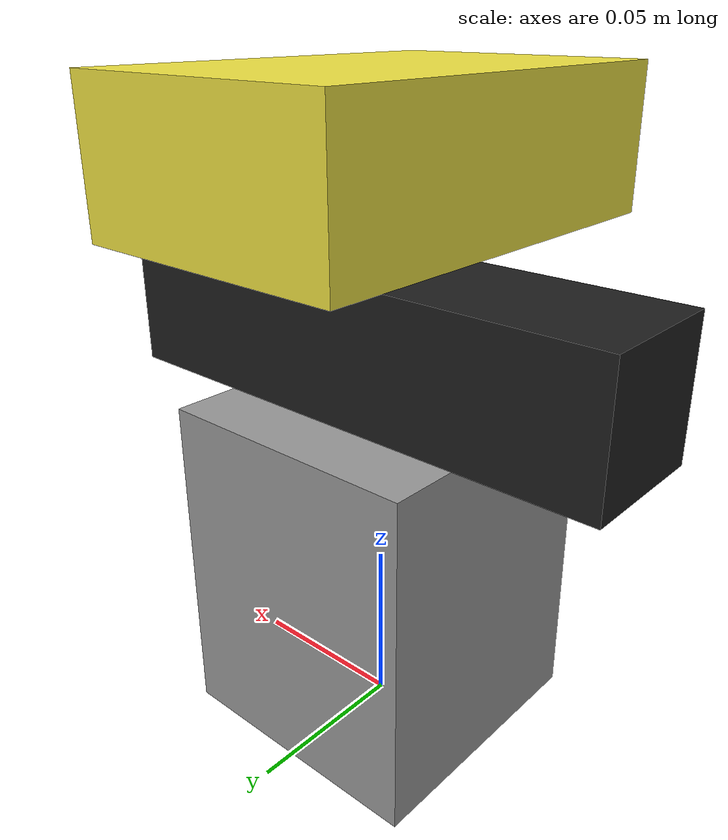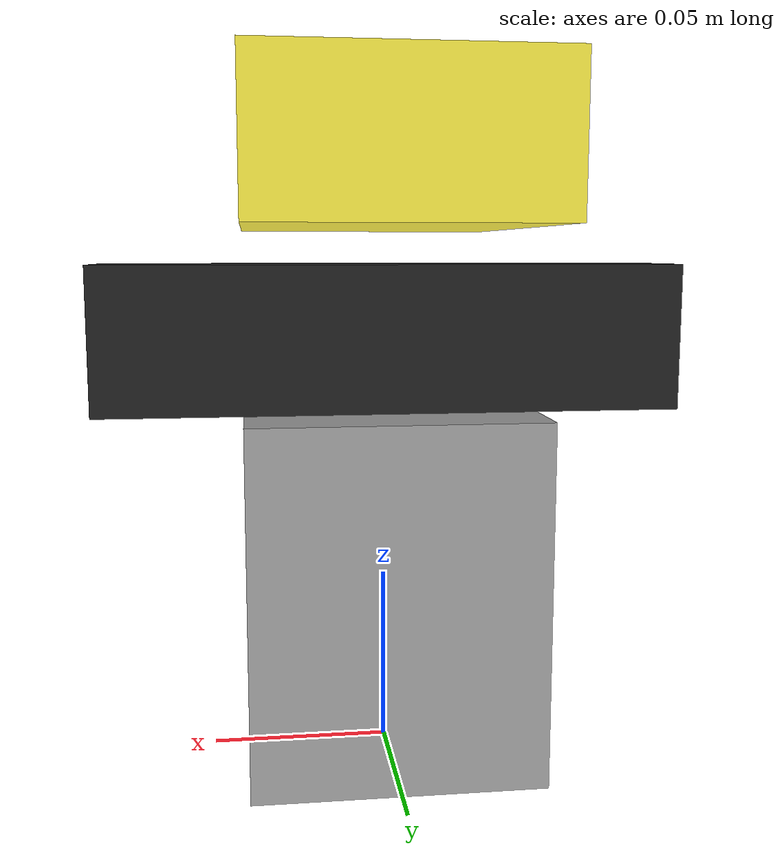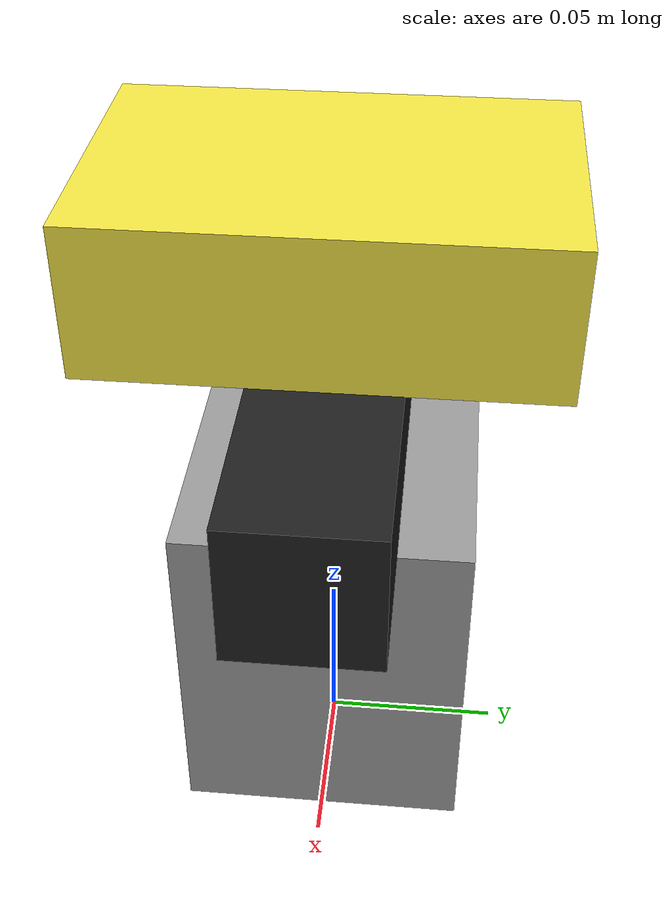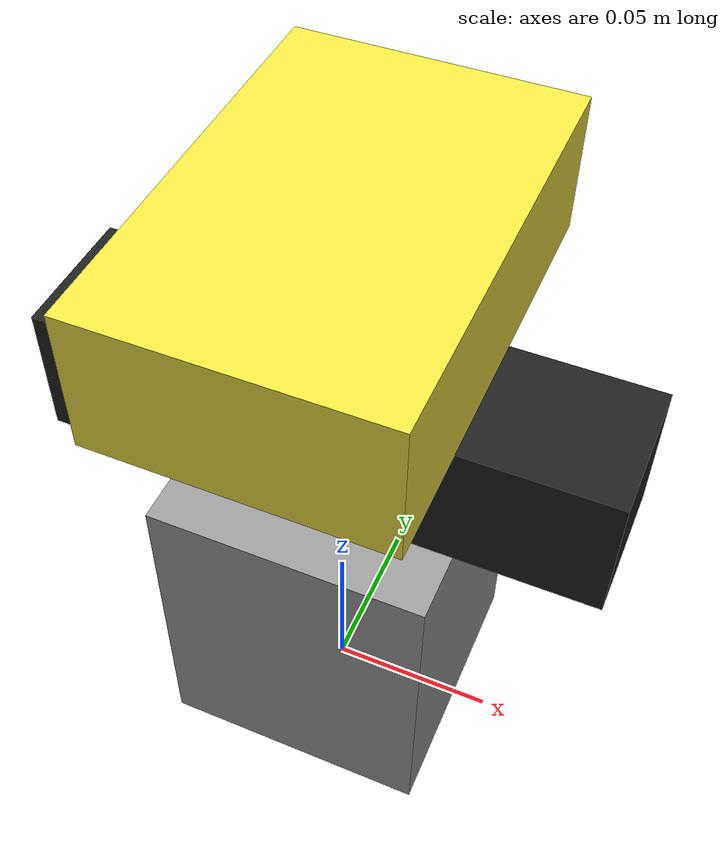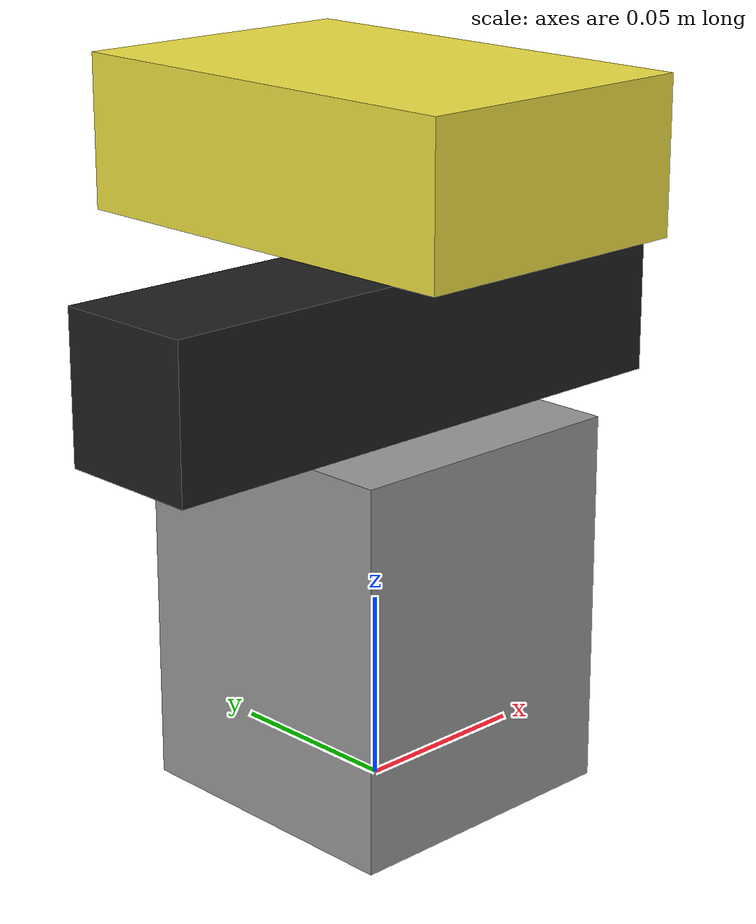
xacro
<?xml version="1.0"?>
<robot name="robot" xmlns:xacro="http://ros.org/wiki/xacro">
  <!-- When using forward controller, it is very important to correctly set the inertial tag of each link
       because efforts are considered -->

  <xacro:property name="package_name" value="mobile_robots_control"/>
  <xacro:property name="PI" value="3.14159265"/>

  <xacro:include filename="$(find ${package_name})/urdf/forward_position_gz.xacro"/>

  <link name="world"/>

  <joint name="base_joint" type="fixed">
    <parent link="world"/>
    <child link="base_link"/>
    <origin xyz="0 0 0" rpy="0 0 0"/>
  </joint>

  <link name="base_link">
    <visual>
      <origin xyz="0 0 0.05" rpy="0 0 0"/>
      <geometry>
        <box size="0.08 0.08 0.1"/>
      </geometry>
    </visual>
    <collision>
      <origin xyz="0 0 0.05" rpy="0 0 0"/>
      <geometry>
        <box size="0.08 0.08 0.1"/>
      </geometry>
    </collision>
    <inertial>
      <origin xyz="0 0 0.05" rpy="0 0 0"/>
      <mass value="10"/>
      <inertia ixx="0.333333" ixy="0.0" ixz="0.0"  iyy="0.333333" iyz="0.0"  izz="0.6"/>
    </inertial>
  </link>

  <joint name="pos0_joint" type="prismatic">
    <parent link="base_link"/>
    <child link="pos0_link"/>
    <origin xyz="0 0 0.05" rpy="0 0 0"/>
    <axis xyz="1 0 0"/>
    <!--dynamics damping="0.1" friction="0.4"/--> <!-- These parameters are ignored, only joint limits are respected -->
    <limit effort="0" velocity="0.0" lower="-0.8" upper="0.8"/>
  </joint>

  <link name="pos0_link">
    <visual>
      <origin xyz="0 0 0.07" rpy="0 0 0"/>
      <geometry>
        <box size="0.16 0.04 0.04"/>
      </geometry>
    </visual>
    <collision>
      <origin xyz="0 0 0.05" rpy="0 0 0"/>
      <geometry>
        <box size="0.16 0.04 0.04"/>
      </geometry>
    </collision>
    <inertial>
      <origin xyz="0 0 0" rpy="0 0 0"/>
      <mass value="1.0"/>
      <inertia ixx="0.00333333" ixy="0.0" ixz="0.0"  iyy="0.00333333" iyz="0.0"  izz="0.006"/>
    </inertial>
  </link>

  <joint name="pos1_joint" type="revolute">
    <parent link="pos0_link"/>
    <child link="pos1_link"/>
    <origin xyz="0 0 0.07" rpy="0 0 0"/>
    <axis xyz="0 0 1"/>
    <!--dynamics damping="1" friction="4"/--> <!-- dynamic setup values are not used, only position limits-->
    <limit effort="0" velocity="0.0" lower="-2.9" upper="2.9"/>
  </joint>

  <link name="pos1_link">
    <visual>
      <origin xyz="0 0 0.05" rpy="0 0 0"/>
      <geometry>
        <box size="0.08 0.12 0.04"/>
      </geometry>
    </visual>
    <collision>
      <origin xyz="0 0 0.05" rpy="0 0 0"/>
      <geometry>
        <box size="0.08 0.12 0.04"/>
      </geometry>
    </collision>
    <inertial>
      <origin xyz="0 0 0" rpy="0 0 0"/>
      <mass value="1.0"/>
      <inertia ixx="0.00333333" ixy="0.0" ixz="0.0"  iyy="0.00333333" iyz="0.0"  izz="0.006"/>
    </inertial>
  </link>

</robot>
